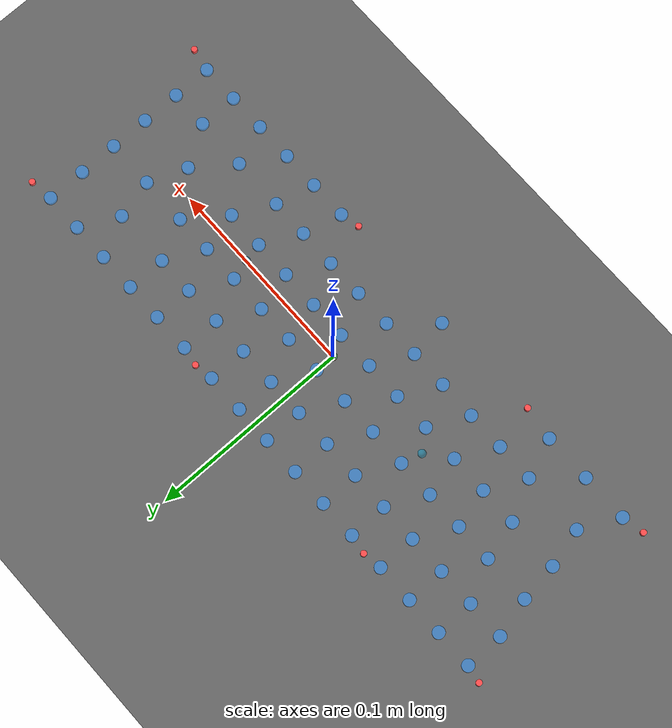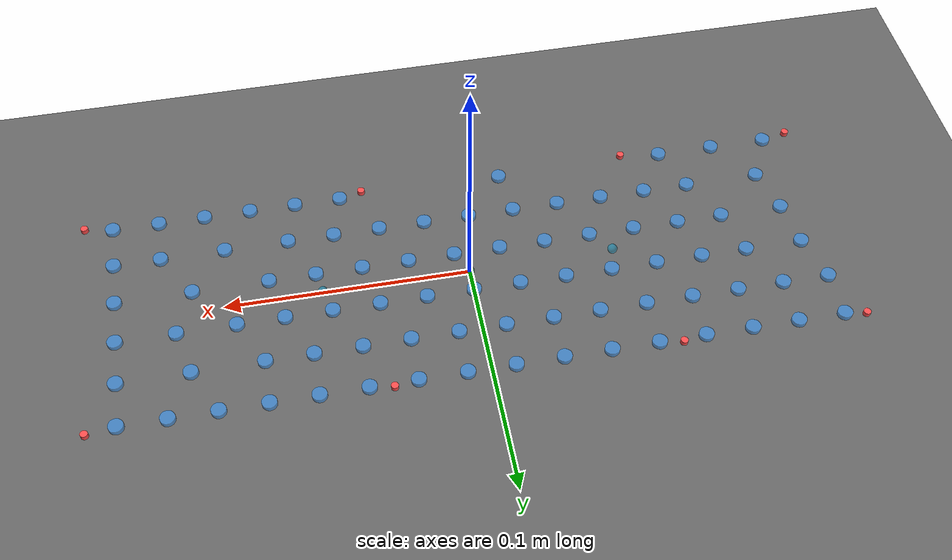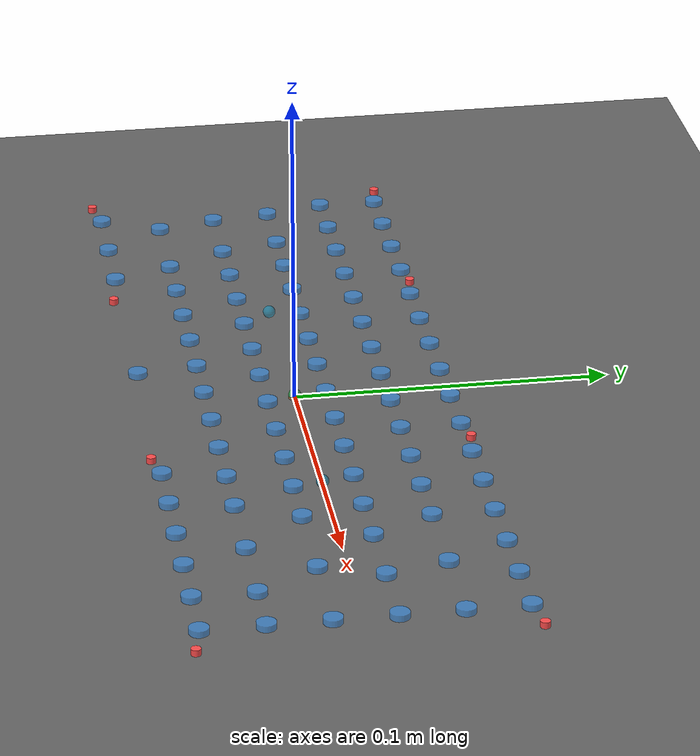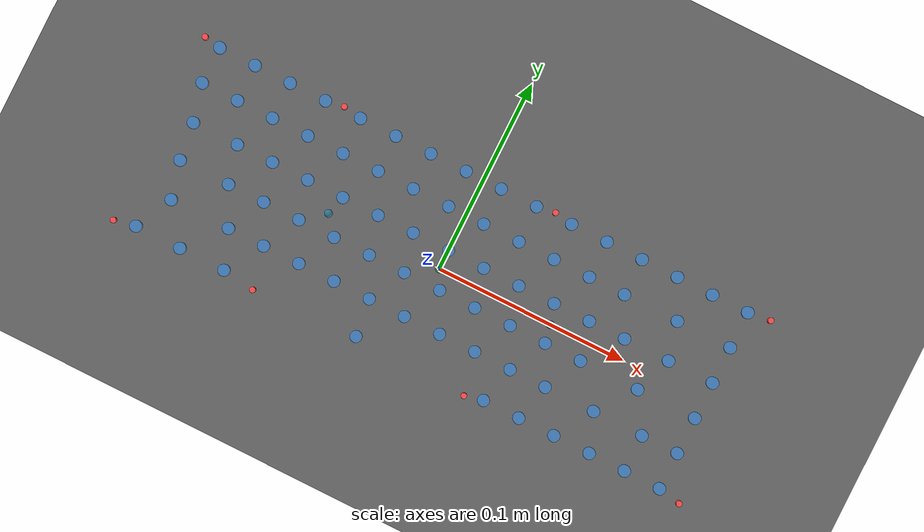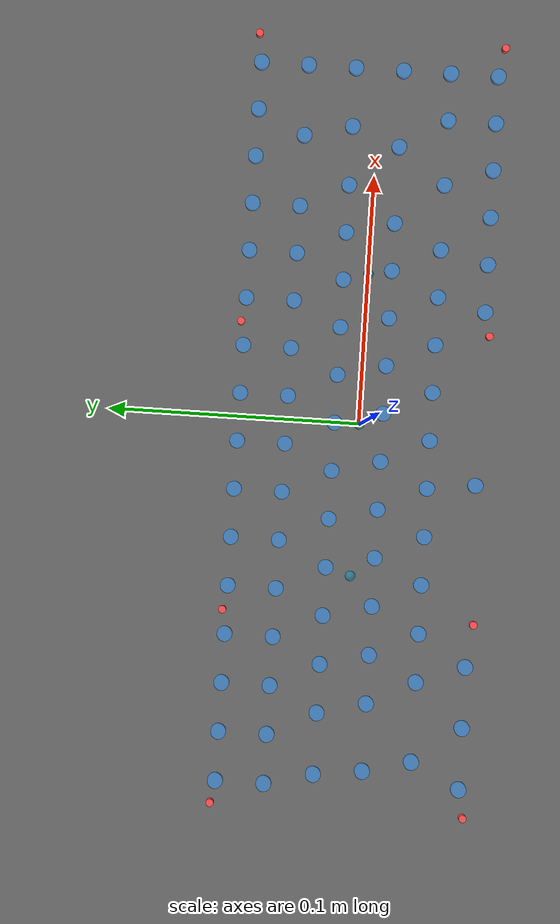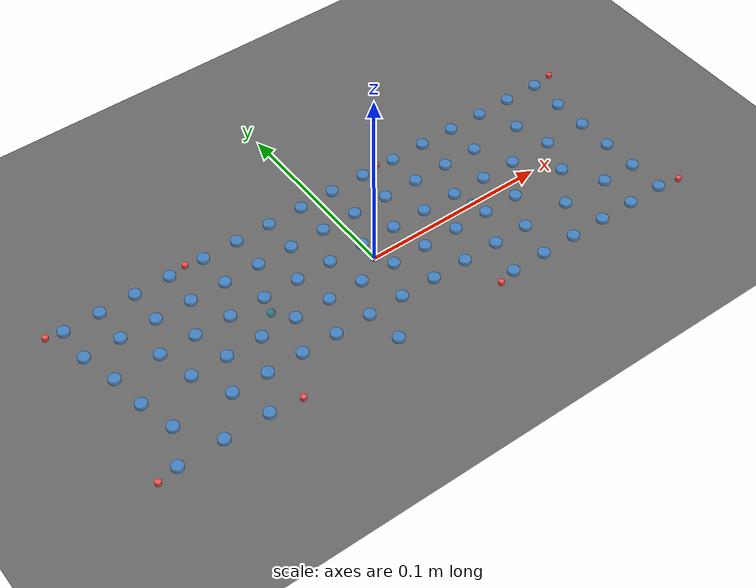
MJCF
<mujoco model="keyboard_aluminum_plate">

  <compiler angle="radian" autolimits="true" meshdir="../../models/meshes"/>

  <option gravity="0 0 -9.81" timestep="0.002"/>

  <asset>
    <mesh name="aluminum_plate_mesh"
          file="Aluminum_Plate.stl"
          scale="0.001 0.001 0.001"/>

    <material name="aluminum_silver"
              rgba="0.75 0.75 0.78 1"
              specular="0.8"
              shininess="0.7"
              reflectance="0.3"/>
  </asset>

  <worldbody>

    <geom name="ground" type="plane" size="1 1 0.1"
          pos="0 0 0"
          friction="0.8 0.005 0.0001"
          rgba="0.4 0.4 0.4 1"/>

    <body name="aluminum_plate" pos="0 0 0">

      <inertial pos="0 0 0.00075"
                mass="0.138"
                diaginertia="1.4e-4 1.3e-3 1.4e-3"/>

      <!-- freejoint added in integration scene (station1.xml) -->

      <geom name="plate_mesh"
            type="mesh"
            mesh="aluminum_plate_mesh"
            pos="-0.002361 0.000056 0.000747"
            material="aluminum_silver"
            contype="0"
            conaffinity="0"/>

      <!-- ROW 0 — Function row (16 keys) -->
      <site name="sw_Esc"     type="cylinder" size="0.003 0.001" pos="-0.1429  0.0480 0.0015" rgba="0.2 0.6 1 0.6"/>
      <site name="sw_F1"      type="cylinder" size="0.003 0.001" pos="-0.1238  0.0480 0.0015" rgba="0.2 0.6 1 0.6"/>
      <site name="sw_F2"      type="cylinder" size="0.003 0.001" pos="-0.1048  0.0480 0.0015" rgba="0.2 0.6 1 0.6"/>
      <site name="sw_F3"      type="cylinder" size="0.003 0.001" pos="-0.0857  0.0480 0.0015" rgba="0.2 0.6 1 0.6"/>
      <site name="sw_F4"      type="cylinder" size="0.003 0.001" pos="-0.0667  0.0480 0.0015" rgba="0.2 0.6 1 0.6"/>
      <site name="sw_F5"      type="cylinder" size="0.003 0.001" pos="-0.0476  0.0480 0.0015" rgba="0.2 0.6 1 0.6"/>
      <site name="sw_F6"      type="cylinder" size="0.003 0.001" pos="-0.0286  0.0480 0.0015" rgba="0.2 0.6 1 0.6"/>
      <site name="sw_F7"      type="cylinder" size="0.003 0.001" pos="-0.0095  0.0480 0.0015" rgba="0.2 0.6 1 0.6"/>
      <site name="sw_F8"      type="cylinder" size="0.003 0.001" pos=" 0.0095  0.0480 0.0015" rgba="0.2 0.6 1 0.6"/>
      <site name="sw_F9"      type="cylinder" size="0.003 0.001" pos=" 0.0286  0.0480 0.0015" rgba="0.2 0.6 1 0.6"/>
      <site name="sw_F10"     type="cylinder" size="0.003 0.001" pos=" 0.0476  0.0480 0.0015" rgba="0.2 0.6 1 0.6"/>
      <site name="sw_F11"     type="cylinder" size="0.003 0.001" pos=" 0.0667  0.0480 0.0015" rgba="0.2 0.6 1 0.6"/>
      <site name="sw_F12"     type="cylinder" size="0.003 0.001" pos=" 0.0857  0.0480 0.0015" rgba="0.2 0.6 1 0.6"/>
      <site name="sw_PrtSc"   type="cylinder" size="0.003 0.001" pos=" 0.1048  0.0480 0.0015" rgba="0.2 0.6 1 0.6"/>
      <site name="sw_Pause"   type="cylinder" size="0.003 0.001" pos=" 0.1238  0.0480 0.0015" rgba="0.2 0.6 1 0.6"/>
      <site name="sw_Del"     type="cylinder" size="0.003 0.001" pos=" 0.1429  0.0480 0.0015" rgba="0.2 0.6 1 0.6"/>

      <!-- ROW 1 — Number row (15 keys) -->
      <site name="sw_Grave"   type="cylinder" size="0.003 0.001" pos="-0.1429  0.0290 0.0015" rgba="0.2 0.6 1 0.6"/>
      <site name="sw_1"       type="cylinder" size="0.003 0.001" pos="-0.1238  0.0290 0.0015" rgba="0.2 0.6 1 0.6"/>
      <site name="sw_2"       type="cylinder" size="0.003 0.001" pos="-0.1048  0.0290 0.0015" rgba="0.2 0.6 1 0.6"/>
      <site name="sw_3"       type="cylinder" size="0.003 0.001" pos="-0.0857  0.0290 0.0015" rgba="0.2 0.6 1 0.6"/>
      <site name="sw_4"       type="cylinder" size="0.003 0.001" pos="-0.0667  0.0290 0.0015" rgba="0.2 0.6 1 0.6"/>
      <site name="sw_5"       type="cylinder" size="0.003 0.001" pos="-0.0476  0.0290 0.0015" rgba="0.2 0.6 1 0.6"/>
      <site name="sw_6"       type="cylinder" size="0.003 0.001" pos="-0.0286  0.0290 0.0015" rgba="0.2 0.6 1 0.6"/>
      <site name="sw_7"       type="cylinder" size="0.003 0.001" pos="-0.0095  0.0290 0.0015" rgba="0.2 0.6 1 0.6"/>
      <site name="sw_8"       type="cylinder" size="0.003 0.001" pos=" 0.0095  0.0290 0.0015" rgba="0.2 0.6 1 0.6"/>
      <site name="sw_9"       type="cylinder" size="0.003 0.001" pos=" 0.0286  0.0290 0.0015" rgba="0.2 0.6 1 0.6"/>
      <site name="sw_0"       type="cylinder" size="0.003 0.001" pos=" 0.0476  0.0290 0.0015" rgba="0.2 0.6 1 0.6"/>
      <site name="sw_Minus"   type="cylinder" size="0.003 0.001" pos=" 0.0667  0.0290 0.0015" rgba="0.2 0.6 1 0.6"/>
      <site name="sw_Equal"   type="cylinder" size="0.003 0.001" pos=" 0.0857  0.0290 0.0015" rgba="0.2 0.6 1 0.6"/>
      <site name="sw_Bksp"    type="cylinder" size="0.003 0.001" pos=" 0.1143  0.0290 0.0015" rgba="0.2 0.6 1 0.6"/>
      <site name="sw_PgUp"    type="cylinder" size="0.003 0.001" pos=" 0.1429  0.0290 0.0015" rgba="0.2 0.6 1 0.6"/>

      <!-- ROW 2 — QWERTY row (15 keys) -->
      <site name="sw_Tab"     type="cylinder" size="0.003 0.001" pos="-0.1381  0.0099 0.0015" rgba="0.2 0.6 1 0.6"/>
      <site name="sw_Q"       type="cylinder" size="0.003 0.001" pos="-0.1143  0.0099 0.0015" rgba="0.2 0.6 1 0.6"/>
      <site name="sw_W"       type="cylinder" size="0.003 0.001" pos="-0.0953  0.0099 0.0015" rgba="0.2 0.6 1 0.6"/>
      <site name="sw_E"       type="cylinder" size="0.003 0.001" pos="-0.0762  0.0099 0.0015" rgba="0.2 0.6 1 0.6"/>
      <site name="sw_R"       type="cylinder" size="0.003 0.001" pos="-0.0572  0.0099 0.0015" rgba="0.2 0.6 1 0.6"/>
      <site name="sw_T"       type="cylinder" size="0.003 0.001" pos="-0.0381  0.0099 0.0015" rgba="0.2 0.6 1 0.6"/>
      <site name="sw_Y"       type="cylinder" size="0.003 0.001" pos="-0.0191  0.0099 0.0015" rgba="0.2 0.6 1 0.6"/>
      <site name="sw_U"       type="cylinder" size="0.003 0.001" pos=" 0.0000  0.0099 0.0015" rgba="0.2 0.6 1 0.6"/>
      <site name="sw_I"       type="cylinder" size="0.003 0.001" pos=" 0.0191  0.0099 0.0015" rgba="0.2 0.6 1 0.6"/>
      <site name="sw_O"       type="cylinder" size="0.003 0.001" pos=" 0.0381  0.0099 0.0015" rgba="0.2 0.6 1 0.6"/>
      <site name="sw_P"       type="cylinder" size="0.003 0.001" pos=" 0.0572  0.0099 0.0015" rgba="0.2 0.6 1 0.6"/>
      <site name="sw_LBrace"  type="cylinder" size="0.003 0.001" pos=" 0.0762  0.0099 0.0015" rgba="0.2 0.6 1 0.6"/>
      <site name="sw_RBrace"  type="cylinder" size="0.003 0.001" pos=" 0.0953  0.0099 0.0015" rgba="0.2 0.6 1 0.6"/>
      <site name="sw_Bkslash" type="cylinder" size="0.003 0.001" pos=" 0.1191  0.0099 0.0015" rgba="0.2 0.6 1 0.6"/>
      <site name="sw_PgDn"    type="cylinder" size="0.003 0.001" pos=" 0.1429  0.0099 0.0015" rgba="0.2 0.6 1 0.6"/>

      <!-- ROW 3 — Home row (14 keys) -->
      <site name="sw_Caps"    type="cylinder" size="0.003 0.001" pos="-0.1357 -0.0092 0.0015" rgba="0.2 0.6 1 0.6"/>
      <site name="sw_A"       type="cylinder" size="0.003 0.001" pos="-0.1095 -0.0092 0.0015" rgba="0.2 0.6 1 0.6"/>
      <site name="sw_S"       type="cylinder" size="0.003 0.001" pos="-0.0905 -0.0092 0.0015" rgba="0.2 0.6 1 0.6"/>
      <site name="sw_D"       type="cylinder" size="0.003 0.001" pos="-0.0714 -0.0092 0.0015" rgba="0.2 0.6 1 0.6"/>
      <site name="sw_F"       type="cylinder" size="0.003 0.001" pos="-0.0524 -0.0092 0.0015" rgba="0.2 0.6 1 0.6"/>
      <site name="sw_G"       type="cylinder" size="0.003 0.001" pos="-0.0333 -0.0092 0.0015" rgba="0.2 0.6 1 0.6"/>
      <site name="sw_H"       type="cylinder" size="0.003 0.001" pos="-0.0143 -0.0092 0.0015" rgba="0.2 0.6 1 0.6"/>
      <site name="sw_J"       type="cylinder" size="0.003 0.001" pos=" 0.0048 -0.0092 0.0015" rgba="0.2 0.6 1 0.6"/>
      <site name="sw_K"       type="cylinder" size="0.003 0.001" pos=" 0.0238 -0.0092 0.0015" rgba="0.2 0.6 1 0.6"/>
      <site name="sw_L"       type="cylinder" size="0.003 0.001" pos=" 0.0429 -0.0092 0.0015" rgba="0.2 0.6 1 0.6"/>
      <site name="sw_Semicol" type="cylinder" size="0.003 0.001" pos=" 0.0619 -0.0092 0.0015" rgba="0.2 0.6 1 0.6"/>
      <site name="sw_Quote"   type="cylinder" size="0.003 0.001" pos=" 0.0810 -0.0092 0.0015" rgba="0.2 0.6 1 0.6"/>
      <site name="sw_Enter"   type="cylinder" size="0.003 0.001" pos=" 0.1119 -0.0092 0.0015" rgba="0.2 0.6 1 0.6"/>
      <site name="sw_Home"    type="cylinder" size="0.003 0.001" pos=" 0.1429 -0.0092 0.0015" rgba="0.2 0.6 1 0.6"/>

      <!-- ROW 4 — Shift row (14 keys) -->
      <site name="sw_LShift"  type="cylinder" size="0.003 0.001" pos="-0.1310 -0.0282 0.0015" rgba="0.2 0.6 1 0.6"/>
      <site name="sw_Z"       type="cylinder" size="0.003 0.001" pos="-0.1000 -0.0282 0.0015" rgba="0.2 0.6 1 0.6"/>
      <site name="sw_X"       type="cylinder" size="0.003 0.001" pos="-0.0810 -0.0282 0.0015" rgba="0.2 0.6 1 0.6"/>
      <site name="sw_C"       type="cylinder" size="0.003 0.001" pos="-0.0619 -0.0282 0.0015" rgba="0.2 0.6 1 0.6"/>
      <site name="sw_V"       type="cylinder" size="0.003 0.001" pos="-0.0429 -0.0282 0.0015" rgba="0.2 0.6 1 0.6"/>
      <site name="sw_B"       type="cylinder" size="0.003 0.001" pos="-0.0238 -0.0282 0.0015" rgba="0.2 0.6 1 0.6"/>
      <site name="sw_N"       type="cylinder" size="0.003 0.001" pos="-0.0048 -0.0282 0.0015" rgba="0.2 0.6 1 0.6"/>
      <site name="sw_M"       type="cylinder" size="0.003 0.001" pos=" 0.0143 -0.0282 0.0015" rgba="0.2 0.6 1 0.6"/>
      <site name="sw_Comma"   type="cylinder" size="0.003 0.001" pos=" 0.0333 -0.0282 0.0015" rgba="0.2 0.6 1 0.6"/>
      <site name="sw_Period"  type="cylinder" size="0.003 0.001" pos=" 0.0524 -0.0282 0.0015" rgba="0.2 0.6 1 0.6"/>
      <site name="sw_Slash"   type="cylinder" size="0.003 0.001" pos=" 0.0714 -0.0282 0.0015" rgba="0.2 0.6 1 0.6"/>
      <site name="sw_RShift"  type="cylinder" size="0.003 0.001" pos=" 0.0976 -0.0282 0.0015" rgba="0.2 0.6 1 0.6"/>
      <site name="sw_Up"      type="cylinder" size="0.003 0.001" pos=" 0.1238 -0.0282 0.0015" rgba="0.2 0.6 1 0.6"/>
      <site name="sw_End"     type="cylinder" size="0.003 0.001" pos=" 0.1429 -0.0282 0.0015" rgba="0.2 0.6 1 0.6"/>

      <!-- ROW 5 — Bottom row (10 keys) -->
      <site name="sw_LCtrl"  type="cylinder" size="0.003 0.001" pos="-0.1405 -0.0473 0.0015" rgba="0.2 0.6 1 0.6"/>
      <site name="sw_LWin"   type="cylinder" size="0.003 0.001" pos="-0.1167 -0.0473 0.0015" rgba="0.2 0.6 1 0.6"/>
      <site name="sw_LAlt"   type="cylinder" size="0.003 0.001" pos="-0.0929 -0.0473 0.0015" rgba="0.2 0.6 1 0.6"/>
      <site name="sw_Space"  type="cylinder" size="0.003 0.001" pos="-0.0214 -0.0473 0.0015" rgba="0.2 0.6 1 0.6"/>
      <site name="sw_RAlt"   type="cylinder" size="0.003 0.001" pos=" 0.0476 -0.0473 0.0015" rgba="0.2 0.6 1 0.6"/>
      <site name="sw_Fn"     type="cylinder" size="0.003 0.001" pos=" 0.0667 -0.0473 0.0015" rgba="0.2 0.6 1 0.6"/>
      <site name="sw_Left"   type="cylinder" size="0.003 0.001" pos=" 0.0857 -0.0473 0.0015" rgba="0.2 0.6 1 0.6"/>
      <site name="sw_Down"   type="cylinder" size="0.003 0.001" pos=" 0.1048 -0.0473 0.0015" rgba="0.2 0.6 1 0.6"/>
      <site name="sw_Right"  type="cylinder" size="0.003 0.001" pos=" 0.1238 -0.0473 0.0015" rgba="0.2 0.6 1 0.6"/>
      <site name="sw_End2"   type="cylinder" size="0.003 0.001" pos=" 0.1429 -0.0473 0.0015" rgba="0.2 0.6 1 0.6"/>

      <site name="screw_FL" type="cylinder" size="0.0015 0.001" pos="-0.1515 -0.0495 0.0015" rgba="1 0.3 0.3 0.9"/>
      <site name="screw_RL" type="cylinder" size="0.0015 0.001" pos="-0.1515  0.0495 0.0015" rgba="1 0.3 0.3 0.9"/>
      <site name="screw_FR" type="cylinder" size="0.0015 0.001" pos=" 0.1545 -0.0495 0.0015" rgba="1 0.3 0.3 0.9"/>
      <site name="screw_RR" type="cylinder" size="0.0015 0.001" pos=" 0.1545  0.0495 0.0015" rgba="1 0.3 0.3 0.9"/>
      <site name="screw_C1" type="cylinder" size="0.0015 0.001" pos="-0.0762  0.0495 0.0015" rgba="1 0.3 0.3 0.9"/>
      <site name="screw_C2" type="cylinder" size="0.0015 0.001" pos=" 0.0381  0.0495 0.0015" rgba="1 0.3 0.3 0.9"/>
      <site name="screw_C3" type="cylinder" size="0.0015 0.001" pos="-0.0762 -0.0495 0.0015" rgba="1 0.3 0.3 0.9"/>
      <site name="screw_C4" type="cylinder" size="0.0015 0.001" pos=" 0.0381 -0.0495 0.0015" rgba="1 0.3 0.3 0.9"/>

      <!-- ══════════════════════════════════════════════════════════════
           PLATE REFERENCE SITES
           ══════════════════════════════════════════════════════════════ -->
      <site name="plate_center"
            type="sphere" size="0.002"
            pos="0 0 0.00075"
            rgba="0 0.8 0.2 0.4"/>

      <site name="vacuum_grasp_L"
            type="sphere" size="0.002"
            pos="-0.06 0 0.0015"
            rgba="0 0.6 0.8 0.5"/>

      <site name="vacuum_grasp_R"
            type="sphere" size="0.002"
            pos=" 0.06 0 0.0015"
            rgba="0 0.6 0.8 0.5"/>

      <site name="plate_bottom"
            type="sphere" size="0.002"
            pos="0 0 0"
            rgba="1 0.5 0 0.4"/>

    </body>

  </worldbody>

</mujoco>
